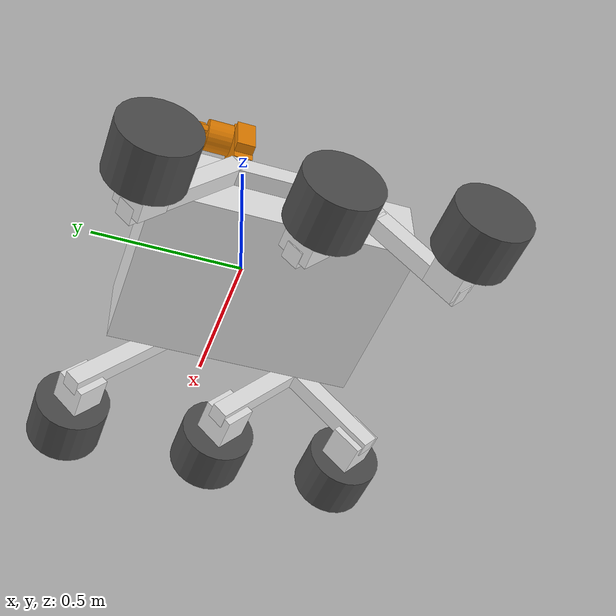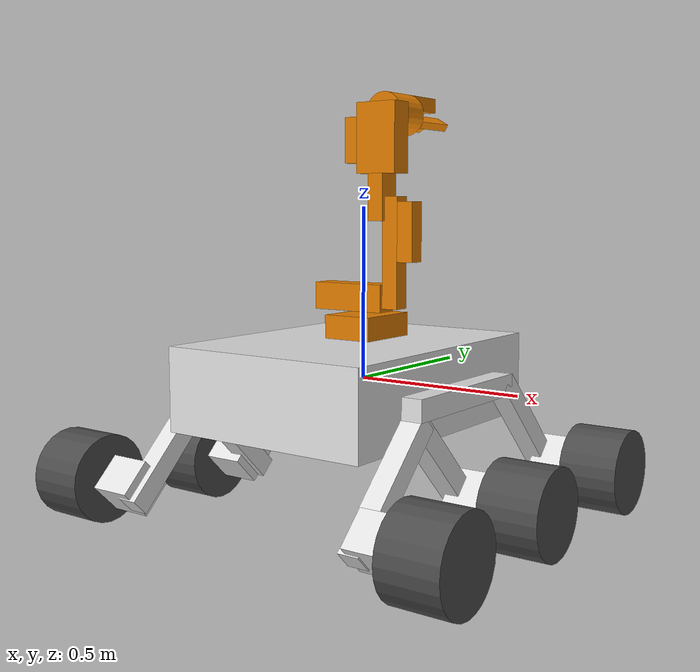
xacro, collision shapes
<?xml version="1.0"?>
<robot name="my_robot_mock" xmlns:xacro="http://www.ros.org/wiki/xacro">

    <xacro:include filename="common_properties.xacro" />
    <xacro:include filename="$(find rover_body_description)/urdf/rover_body.urdf.xacro" />

    <xacro:include filename="rover_body_mock.ros2_control.xacro" />

    <xacro:include filename="$(find rover_arm_description)/urdf/rover_arm.urdf.xacro" />
    <xacro:include filename="$(find rover_arm_description)/urdf/rover_arm.ros2_control.xacro" />

    <!-- rover base frames -->
    <link name="world"/>
    <link name="base_footprint"/>
    <link name="base_link"/>
    <joint name="world_to_base_footprint" type="fixed">
        <parent link="world"/>
        <child link="base_footprint"/>
        <origin xyz="0 0 0" rpy="0 0 0"/>
    </joint>
    <joint name="base_footprint_to_base_link" type="fixed">
        <parent link="base_footprint"/>
        <child link="base_link"/>
        <origin xyz="0 0 0" rpy="0 0 0"/>
    </joint>

    <!-- rover body: detailed frame/suspensions/wheels, main link is body_frame -->
    <xacro:rover_body parent="base_link" prefix="body_">
        <origin xyz="0 0 0" rpy="0 0 0"/>
    </xacro:rover_body>

    <link name="arm_mount"/>
    <joint name="arm_mount_joint" type="fixed">
        <parent link="body_frame"/>
        <child link="arm_mount"/>
        <origin xyz="0 0 0.15" rpy="0 0 0"/>
    </joint>
    <link name="arm_base_link"/>
    <joint name="arm_mount_to_arm_base" type="fixed">
        <parent link="arm_mount"/>
        <child link="arm_base_link"/>
        <origin xyz="0 0 0" rpy="0 0 0"/>
    </joint>

    <xacro:rover_arm parent="arm_base_link" prefix="">
        <origin xyz="0 0 0" rpy="0 0 0"/>
    </xacro:rover_arm>

    <link name="tool0"/>
    <joint name="ee_base_to_tool0" type="fixed">
        <parent link="ee_base"/>
        <child link="tool0"/>
        <origin xyz="0 0 0" rpy="0 0 0"/>
    </joint>

  <xacro:arm_ros2_control name="rover_arm" use_gazebo="true"/>

<!-- Inclusione diretta del modulo telecamera, già vincolato al braccio -->
<xacro:include filename="$(find rover_arm_description)/urdf/camera_arm.urdf.xacro" />
    <!-- Plugin di controllo corretto con estensione .so -->
    <gazebo>
        <plugin filename="libgz_ros2_control-system.so" name="gz_ros2_control::GazeboSimROS2ControlPlugin">
            <parameters>$(optenv arm_ctrl_yaml /tmp/robot_controllers.yaml)</parameters>
        </plugin>
    </gazebo>

    <!-- Plugin di sistema per abilitare i sensori ottici in Gazebo -->
    <gazebo>
        <plugin filename="gz-sim-sensors-system" name="gz::sim::systems::Sensors">
            <render_engine>ogre2</render_engine>
        </plugin>
    </gazebo>

    <!-- Definizione del sensore con Frame ID allineato -->
    <gazebo reference="camera">
      <sensor type="camera" name="rgb_camera">
        <always_on>true</always_on>
        <update_rate>30.0</update_rate>
        <camera>
          <horizontal_fov>1.047</horizontal_fov>
          <image>
            <width>640</width>
            <height>480</height>
            <format>R8G8B8</format>
          </image>
          <clip>
            <near>0.05</near>
            <far>8.0</far>
          </clip>
        </camera>
        <topic>/camera/image_raw</topic>
        <gz_frame_id>camera</gz_frame_id>
      </sensor>
    </gazebo>
</robot>

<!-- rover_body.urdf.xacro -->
<robot xmlns:xacro="http://www.ros.org/wiki/xacro">

  <xacro:include filename="wheel.urdf.xacro" />

  <xacro:macro name="rover_body" params="prefix parent *origin">

  <!-- LINK OFFSETS -->
  <xacro:property name="frame_rotation_offset" value="${pi / 2} 0 0" />
  <xacro:property name="left_suspension_rotation_offset" value="${pi / 2} 0 0" />
  <xacro:property name="left_sub_suspension_rotation_offset" value="${pi / 2} 0 0" />
  <xacro:property name="right_suspension_rotation_offset" value="${pi / 2} 0 0" />
  <xacro:property name="right_sub_suspension_rotation_offset" value="${pi / 2} 0 0" />

  <!-- JOINT POSITIONS -->
  <xacro:property name="frame_joint_pos" value="0 0 0" />
  <xacro:property name="left_suspension_joint_pos" value="-0.3516 -0.053959 0" />
  <xacro:property name="left_sub_suspension_joint_pos" value="0.028 -0.249772 -0.051126" />
  <xacro:property name="right_suspension_joint_pos" value="0.3516 -0.053959 0" />
  <xacro:property name="right_sub_suspension_joint_pos" value="-0.028 -0.249772 -0.051126" />

  <!-- Camera dimentions and positions -->
  <xacro:property name="pole_height" value="0.312"/>
  <xacro:property name="pole_width" value="0.02"/>
  <xacro:property name="camera_len" value="0.178"/>
  <xacro:property name="camera_width" value="0.045"/>
  <xacro:property name="camera_height" value="0.03"/>

  <!-- COLORS -->
  <!-- links color -->
  <material name="${prefix}links_color">
    <color rgba="0.9 0.9 0.9 1.0"/>
  </material>

  <link name="${prefix}frame">
    <inertial>
      <mass value="20.0"/>
      <inertia ixx="1.0" ixy="0.0" ixz="0.0" iyy="1.0" iyz="0.0" izz="1.0"/>
    </inertial>
    <visual>
      <origin xyz="0 0 0" rpy="${frame_rotation_offset}"/>
      <geometry>
        <mesh filename="package://rover_body_description/meshes/visual/frame.stl" scale="0.001 0.001 0.001"/>
      </geometry>
      <material name="${prefix}links_color"/>
    </visual>
    <collision>
      <origin xyz="0 -0.053959 0" rpy="0 0 0"/>
      <geometry>
        <box size="0.64 0.84 0.24"/>
      </geometry>
    </collision>
  </link>

  <link name="${prefix}left_suspension">
    <inertial>
      <mass value="3.0"/>
      <inertia ixx="0.1" ixy="0.0" ixz="0.0" iyy="0.1" iyz="0.0" izz="0.1"/>
    </inertial>
    <visual>
      <origin xyz="0 0 0" rpy="${left_suspension_rotation_offset}"/>
      <geometry>
        <mesh filename="package://rover_body_description/meshes/visual/left_suspension.stl" scale="0.001 0.001 0.001"/>
      </geometry>
      <material name="${prefix}links_color"/>
    </visual>
    <collision>
      <origin xyz="-0.024 -0.032 0" rpy="0 0 0"/>
      <geometry>
        <box size="0.06 0.48 0.06"/>
      </geometry>
    </collision>
    <collision>
      <origin xyz="-0.024 ${-0.032+0.38} -0.15" rpy="${- pi / 4} 0 0"/>
      <geometry>
        <box size="0.06 0.45 0.06"/>
      </geometry>
    </collision>
    <collision>
      <origin xyz="-0.094 ${-0.032 + 0.38 + 0.12} ${-0.15-0.12}" rpy="${- pi / 4} 0 0"/>
      <geometry>
        <box size="0.14 0.11 0.11"/>
      </geometry>
    </collision>
  </link>

  <link name="${prefix}left_sub_suspension">
    <inertial>
      <mass value="1.5"/>
      <inertia ixx="0.05" ixy="0.0" ixz="0.0" iyy="0.05" iyz="0.0" izz="0.05"/>
    </inertial>
    <visual>
      <origin xyz="0 0 0" rpy="${left_sub_suspension_rotation_offset}"/>
      <geometry>
        <mesh filename="package://rover_body_description/meshes/visual/left_sub_suspension.stl" scale="0.001 0.001 0.001"/>
      </geometry>
      <material name="${prefix}links_color"/>
    </visual>
    <collision>
      <origin xyz="-0.05 0.125 -0.125" rpy="${- pi / 4} 0 0"/>
      <geometry>
        <box size="0.06 0.4 0.06"/>
      </geometry>
    </collision>
    <collision>
      <origin xyz="-0.05 -0.125 -0.125" rpy="${pi / 4} 0 0"/>
      <geometry>
        <box size="0.06 0.4 0.06"/>
      </geometry>
    </collision>
    <collision>
      <origin xyz="-0.11 ${0.125 + 0.1} ${- 0.125 - 0.1}" rpy="${- pi / 4} 0 0"/>
      <geometry>
        <box size="0.14 0.11 0.11"/>
      </geometry>
    </collision>
    <collision>
      <origin xyz="-0.11 ${- 0.125 - 0.1} ${- 0.125 - 0.1}" rpy="${- pi / 4} 0 0"/>
      <geometry>
        <box size="0.14 0.11 0.11"/>
      </geometry>
    </collision>
  </link>

  <link name="${prefix}right_suspension">
    <inertial>
      <mass value="3.0"/>
      <inertia ixx="0.1" ixy="0.0" ixz="0.0" iyy="0.1" iyz="0.0" izz="0.1"/>
    </inertial>
    <visual>
      <origin xyz="0 0 0" rpy="${right_suspension_rotation_offset}"/>
      <geometry>
        <mesh filename="package://rover_body_description/meshes/visual/right_suspension.stl" scale="0.001 0.001 0.001"/>
      </geometry>
      <material name="${prefix}links_color"/>
    </visual>
    <collision>
      <origin xyz="0.024 -0.032 0" rpy="0 0 0"/>
      <geometry>
        <box size="0.06 0.48 0.06"/>
      </geometry>
    </collision>
    <collision>
      <origin xyz="0.024 ${-0.032+0.38} -0.15" rpy="${- pi / 4} 0 0"/>
      <geometry>
        <box size="0.06 0.45 0.06"/>
      </geometry>
    </collision>
    <collision>
      <origin xyz="0.094 ${-0.032 + 0.38 + 0.12} ${-0.15-0.12}" rpy="${- pi / 4} 0 0"/>
      <geometry>
        <box size="0.14 0.11 0.11"/>
      </geometry>
    </collision>
  </link>

  <link name="${prefix}right_sub_suspension">
    <inertial>
      <mass value="1.5"/>
      <inertia ixx="0.05" ixy="0.0" ixz="0.0" iyy="0.05" iyz="0.0" izz="0.05"/>
    </inertial>
    <visual>
      <origin xyz="0 0 0" rpy="${right_sub_suspension_rotation_offset}"/>
      <geometry>
        <mesh filename="package://rover_body_description/meshes/visual/right_sub_suspension.stl" scale="0.001 0.001 0.001"/>
      </geometry>
      <material name="${prefix}links_color"/>
    </visual>
    <collision>
      <origin xyz="0.05 0.125 -0.125" rpy="${- pi / 4} 0 0"/>
      <geometry>
        <box size="0.06 0.4 0.06"/>
      </geometry>
    </collision>
    <collision>
      <origin xyz="0.05 -0.125 -0.125" rpy="${pi / 4} 0 0"/>
      <geometry>
        <box size="0.06 0.4 0.06"/>
      </geometry>
    </collision>
    <collision>
      <origin xyz="0.11 ${0.125 + 0.1} ${- 0.125 - 0.1}" rpy="${- pi / 4} 0 0"/>
      <geometry>
        <box size="0.14 0.11 0.11"/>
      </geometry>
    </collision>
    <collision>
      <origin xyz="0.11 ${- 0.125 - 0.1} ${- 0.125 - 0.1}" rpy="${- pi / 4} 0 0"/>
      <geometry>
        <box size="0.14 0.11 0.11"/>
      </geometry>
    </collision>
  </link>

  <joint name="${prefix}mount_joint" type="fixed">
    <parent link="${parent}"/>
    <child link="${prefix}frame"/>
    <xacro:insert_block name="origin" />
  </joint>

  <joint name="${prefix}left_suspension_joint" type="revolute">
    <parent link="${prefix}frame"/>
    <child link="${prefix}left_suspension"/>
    <origin xyz="${left_suspension_joint_pos}" rpy="0 0 0"/>
    <axis xyz="1 0 0"/>
    <limit lower="${-pi / 2}" upper="${pi / 2}" effort="50.0" velocity="1.0"/>
  </joint>

  <joint name="${prefix}left_sub_suspension_joint" type="revolute">
    <parent link="${prefix}left_suspension"/>
    <child link="${prefix}left_sub_suspension"/>
    <origin xyz="${left_sub_suspension_joint_pos}" rpy="0 0 0"/>
    <axis xyz="1 0 0"/>
    <limit lower="${-pi / 2}" upper="${pi / 2}" effort="50.0" velocity="1.0"/>
  </joint>

  <joint name="${prefix}right_suspension_joint" type="revolute">
    <parent link="${prefix}frame"/>
    <child link="${prefix}right_suspension"/>
    <origin xyz="${right_suspension_joint_pos}" rpy="0 0 0"/>
    <axis xyz="1 0 0"/>
    <limit lower="${-pi / 2}" upper="${pi / 2}" effort="50.0" velocity="1.0"/>
  </joint>

  <joint name="${prefix}right_sub_suspension_joint" type="revolute">
    <parent link="${prefix}right_suspension"/>
    <child link="${prefix}right_sub_suspension"/>
    <origin xyz="${right_sub_suspension_joint_pos}" rpy="0 0 0"/>
    <axis xyz="1 0 0"/>
    <limit lower="${-pi / 2}" upper="${pi / 2}" effort="50.0" velocity="1.0"/>
  </joint>

  <!-- Left Wheels - mirror=0 -->
  <xacro:wheel prefix="${prefix}front_left" parent="${prefix}left_suspension" x_pos="-0.137" y_pos="0.480039" z_pos="-0.276626" mirror="0" />
  <xacro:wheel prefix="${prefix}mid_left"   parent="${prefix}left_sub_suspension" x_pos="-0.1645"  y_pos="0.211339" z_pos="-0.244995" mirror="0" />
  <xacro:wheel prefix="${prefix}rear_left"  parent="${prefix}left_sub_suspension" x_pos="-0.1645" y_pos="-0.244995" z_pos="-0.211339" mirror="0" />

  <!-- Right Wheels - mirror=1 -->
  <xacro:wheel prefix="${prefix}front_right" parent="${prefix}right_suspension" x_pos="0.137" y_pos="0.480039" z_pos="-0.276626" mirror="1" />
  <xacro:wheel prefix="${prefix}mid_right"   parent="${prefix}right_sub_suspension" x_pos="0.1645"  y_pos="0.229" z_pos="-0.2285" mirror="1" />
  <xacro:wheel prefix="${prefix}rear_right"  parent="${prefix}right_sub_suspension" x_pos="0.1645" y_pos="-0.229" z_pos="-0.225" mirror="1" />

  </xacro:macro>
</robot>

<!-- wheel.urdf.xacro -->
<robot xmlns:xacro="http://www.ros.org/wiki/xacro">

  <!-- x_pos, y_pos, z_pos: wheel joint position in relation to the parent link -->
  <!-- mirror: has a value of 0 for the left side, and 1 for the right side -->
  <xacro:macro name="wheel" params="prefix parent x_pos y_pos z_pos mirror">

    <joint name="${prefix}_wheel_joint" type="continuous">
      <parent link="${parent}"/>
      <child link="${prefix}_wheel_link"/>
      <origin xyz="${x_pos} ${y_pos} ${z_pos}" rpy="0 0 0"/>
      <axis xyz="1 0 0"/>
    </joint>

    <link name="${prefix}_wheel_link">
      <visual>
        <origin xyz="0 0 0" rpy="${pi / 2} 0 ${mirror * pi}"/>
        <geometry>
          <mesh filename="package://rover_body_description/meshes/visual/wheel.stl" scale="0.001 0.001 0.001"/>
        </geometry>
        <material name="black">
          <color rgba="0.3 0.3 0.3 1.0"/>
        </material>
      </visual>

      <collision>
        <origin xyz="${(mirror * 0.17) - 0.17 / 2} 0 0" rpy="${pi / 2} 0 ${pi / 2}"/>
        <geometry>
          <cylinder radius="0.125" length="0.17"/>
        </geometry>
      </collision>

      <inertial>
        <mass value="2.0"/>
        <inertia ixx="0.015" ixy="0.0" ixz="0.0" iyy="0.025" iyz="0.0" izz="0.025"/>
      </inertial>
    </link>

  </xacro:macro>
</robot>

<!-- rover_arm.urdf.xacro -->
<robot name="rover_arm" xmlns:xacro="http://www.ros.org/wiki/xacro">
<xacro:macro name="rover_arm" params="parent prefix *origin">
<!-- LINK OFFSETS -->
<xacro:property name="base_rotation_offset" value="${pi / 2} 0 0"/>
<xacro:property name="j1_rotation_offset" value="${pi / 2} 0 0"/>
<xacro:property name="j2_rotation_offset" value="${pi / 6} 0 0"/>
<xacro:property name="j3_rotation_offset" value="${pi - 0.4366117} 0 0"/>
<!-- JOINT POSITIONS -->
<xacro:property name="j1_joint_pos" value="0 0 0.024"/>
<xacro:property name="j2_joint_pos" value="0.0808 0 0.071"/>
<xacro:property name="j3_joint_pos" value="0.007 0 0.25"/>
<xacro:property name="ee_base_joint_pos" value="-0.028 0 0.2715"/>
<xacro:property name="slider_joint_pos" value="0 0.11 0"/>
<xacro:property name="finger1_joint_pos" value="-0.052384 0.134522 -0.016965"/>
<xacro:property name="finger1_joint_rotation" value="0 ${-pi / 6} 0"/>
<xacro:property name="finger2_joint_pos" value="0.011500 0.134522 0.053848"/>
<xacro:property name="finger2_joint_rotation" value="0 ${pi / 2} 0"/>
<xacro:property name="finger3_joint_pos" value="0.040884 0.134522 -0.036883"/>
<xacro:property name="finger3_joint_rotation" value="0 ${pi * 7 / 6} 0"/>
<!-- COLORS -->
<!-- links color -->
<material name="${prefix}links_color">
<color rgba="0.9 0.5 0.0 1.0"/>
</material>
<!-- SLIDER TO FINGER CINEMATIC RELATION -->
<xacro:property name="slider_length" value="0.05"/>
<xacro:property name="finger_rotation_upper_bound" value="${pi / 2}"/>
<!--
 the formula used to calculate the multiplier is given by the total rotation distance divided by the total sliding distance
-->
<xacro:property name="relation_multip" value="${finger_rotation_upper_bound / slider_length}"/>
<!--
 Wrist gear visual: a toothed-hub (disc + crossing spokes) that rotates
        with the wrist joint, making j4 (pitch) and j5 (roll) clearly visible.
-->
<xacro:macro name="wrist_gear" params="radius length color xyz rpy">
<visual name="gear_disc">
<origin xyz="${xyz}" rpy="${rpy}"/>
<geometry>
<cylinder radius="${radius}" length="${length}"/>
</geometry>
<material name="wrist_gear_mat">
<color rgba="${color}"/>
</material>
</visual>
<visual name="gear_bar_x">
<origin xyz="${xyz}" rpy="${rpy}"/>
<geometry>
<box size="${radius * 2.0} ${radius * 0.28} ${length}"/>
</geometry>
<material name="wrist_gear_mat">
<color rgba="${color}"/>
</material>
</visual>
<visual name="gear_bar_y">
<origin xyz="${xyz}" rpy="${rpy}"/>
<geometry>
<box size="${radius * 0.28} ${radius * 2.0} ${length}"/>
</geometry>
<material name="wrist_gear_mat">
<color rgba="${color}"/>
</material>
</visual>
</xacro:macro>
<!-- BASE LINK -->
<link name="${prefix}base">
<visual>
<origin xyz="0 0 0" rpy="${base_rotation_offset}"/>
<geometry>
<mesh filename="package://rover_arm_description/meshes/visual/base.stl" scale="0.001 0.001 0.001"/>
</geometry>
<material name="${prefix}links_color"/>
</visual>
<collision>
<origin xyz="0 0.015 -0.022" rpy="0 0 0"/>
<geometry>
<box size="0.153000 0.202000 0.122040"/>
</geometry>
</collision>
<inertial>
<mass value="2.5"/>
<inertia ixx="0.02" ixy="0.0" ixz="0.0" iyy="0.02" iyz="0.0" izz="0.02"/>
</inertial>
</link>
<link name="${prefix}j1">
<visual>
<origin xyz="0 0 0" rpy="${j1_rotation_offset}"/>
<geometry>
<mesh filename="package://rover_arm_description/meshes/visual/j1.stl" scale="0.001 0.001 0.001"/>
</geometry>
<material name="${prefix}links_color"/>
</visual>
<collision>
<origin xyz="-0.035 0 0.065" rpy="0 0 0"/>
<geometry>
<box size="0.23 0.07 0.08"/>
</geometry>
</collision>
<inertial>
<mass value="1.5"/>
<inertia ixx="0.01" ixy="0.0" ixz="0.0" iyy="0.01" iyz="0.0" izz="0.01"/>
</inertial>
</link>
<link name="${prefix}j2">
<visual>
<origin xyz="0 0 0" rpy="${j2_rotation_offset}"/>
<geometry>
<mesh filename="package://rover_arm_description/meshes/visual/j2.stl" scale="0.001 0.001 0.001"/>
</geometry>
<material name="${prefix}links_color"/>
</visual>
<collision>
<origin xyz="${0.05 / 2} 0 ${0.25 / 2}" rpy="0 0 0"/>
<geometry>
<box size="0.05 0.05 0.32"/>
</geometry>
</collision>
<collision>
<origin xyz="${0.05 + 0.05 / 2} 0 0.185" rpy="0 0 0"/>
<geometry>
<box size="0.05 0.05 0.17"/>
</geometry>
</collision>
<inertial>
<mass value="1.2"/>
<inertia ixx="0.008" ixy="0.0" ixz="0.0" iyy="0.008" iyz="0.0" izz="0.008"/>
</inertial>
</link>
<link name="${prefix}j3">
<visual>
<origin xyz="0 0 0" rpy="${j3_rotation_offset}"/>
<geometry>
<mesh filename="package://rover_arm_description/meshes/visual/j3.stl" scale="0.001 0.001 0.001"/>
</geometry>
<material name="${prefix}links_color"/>
</visual>
<!-- drive gear for wrist pitch (j4) -->
<xacro:wrist_gear radius="0.04" length="0.02" color="0.25 0.25 0.28 1.0" xyz="${ee_base_joint_pos}" rpy="0 ${-pi / 2} 0"/>
<collision>
<origin xyz="${-0.05 / 2} 0 0.04" rpy="0 0 0"/>
<geometry>
<box size="0.05 0.07 0.15"/>
</geometry>
</collision>
<collision>
<origin xyz="${-0.05 / 2} 0 0.2" rpy="0 0 0"/>
<geometry>
<box size="0.13 0.07 0.2"/>
</geometry>
</collision>
<collision>
<origin xyz="${-(0.05 + 0.13 + 0.04) / 2} 0 0.195" rpy="0 0 0"/>
<geometry>
<box size="0.04 0.07 0.13"/>
</geometry>
</collision>
<inertial>
<mass value="1.0"/>
<inertia ixx="0.006" ixy="0.0" ixz="0.0" iyy="0.006" iyz="0.0" izz="0.006"/>
</inertial>
</link>
<!-- END EFFECTOR BASE -->
<link name="${prefix}ee_base">
<visual>
<origin xyz="0 0.018007 0" rpy="0 0 0"/>
<geometry>
<mesh filename="package://rover_arm_description/meshes/visual/end_effector_base.stl" scale="0.001 0.001 0.001"/>
</geometry>
<material name="${prefix}links_color"/>
</visual>
<!-- driven gear for wrist roll (j5) -->
<xacro:wrist_gear radius="0.038" length="0.02" color="0.25 0.25 0.28 1.0" xyz="0 0 0" rpy="${pi / 2} 0 0"/>
<collision>
<origin xyz="0 0.07 0" rpy="${pi / 2} 0 0"/>
<geometry>
<cylinder radius="0.06" length="0.12"/>
</geometry>
</collision>
<inertial>
<mass value="0.6"/>
<inertia ixx="0.003" ixy="0.0" ixz="0.0" iyy="0.003" iyz="0.0" izz="0.003"/>
</inertial>
</link>
<!-- END EFFECTOR SLIDER -->
<link name="${prefix}ee_slider">
<visual>
<origin xyz="0 0 0" rpy="0 0 0"/>
<geometry>
<mesh filename="package://rover_arm_description/meshes/visual/end_effector_slider.stl" scale="0.001 0.001 0.001"/>
</geometry>
<material name="${prefix}links_color"/>
</visual>
<inertial>
<mass value="0.3"/>
<inertia ixx="0.002" ixy="0.0" ixz="0.0" iyy="0.002" iyz="0.0" izz="0.002"/>
</inertial>
</link>
<!-- END EFFECTOR FINGERS -->
<!-- finger 1 -->
<link name="${prefix}ee_finger1">
<visual>
<origin xyz="0 0 0" rpy="0 0 0"/>
<geometry>
<mesh filename="package://rover_arm_description/meshes/visual/end_effector_finger.stl" scale="0.001 0.001 0.001"/>
</geometry>
<material name="${prefix}links_color"/>
</visual>
<collision>
<origin xyz="0.016 ${0.14 / 2} ${- 0.022 / 2}" rpy="0 0 0"/>
<geometry>
<box size="0.042 0.14 0.022"/>
</geometry>
</collision>
<inertial>
<mass value="0.05"/>
<inertia ixx="0.0005" ixy="0.0" ixz="0.0" iyy="0.0005" iyz="0.0" izz="0.0005"/>
</inertial>
</link>
<!-- finger 2 -->
<link name="${prefix}ee_finger2">
<visual>
<origin xyz="0 0 0" rpy="0 0 0"/>
<geometry>
<mesh filename="package://rover_arm_description/meshes/visual/end_effector_finger.stl" scale="0.001 0.001 0.001"/>
</geometry>
<material name="${prefix}links_color"/>
</visual>
<collision>
<origin xyz="0.016 ${0.14 / 2} ${- 0.022 / 2}" rpy="0 0 0"/>
<geometry>
<box size="0.042 0.14 0.022"/>
</geometry>
</collision>
<inertial>
<mass value="0.05"/>
<inertia ixx="0.0005" ixy="0.0" ixz="0.0" iyy="0.0005" iyz="0.0" izz="0.0005"/>
</inertial>
</link>
<!-- finger 3 -->
<link name="${prefix}ee_finger3">
<visual>
<origin xyz="0 0 0" rpy="0 0 0"/>
<geometry>
<mesh filename="package://rover_arm_description/meshes/visual/end_effector_finger.stl" scale="0.001 0.001 0.001"/>
</geometry>
<material name="${prefix}links_color"/>
</visual>
<collision>
<origin xyz="0.016 ${0.14 / 2} ${- 0.022 / 2}" rpy="0 0 0"/>
<geometry>
<box size="0.042 0.14 0.022"/>
</geometry>
</collision>
<inertial>
<mass value="0.05"/>
<inertia ixx="0.0005" ixy="0.0" ixz="0.0" iyy="0.0005" iyz="0.0" izz="0.0005"/>
</inertial>
</link>
<joint name="${prefix}mount_joint" type="fixed">
<parent link="${parent}"/>
<child link="${prefix}base"/>
<xacro:insert_block name="origin"/>
</joint>
<!-- CONNECT J1 TO THE BASE -->
<joint name="${prefix}j1_joint" type="continuous">
<parent link="${prefix}base"/>
<child link="${prefix}j1"/>
<origin xyz="${j1_joint_pos}" rpy="0 0 0"/>
<!-- Rotation Axis -->
<axis xyz="0 0 1"/>
</joint>
<!-- CONNECT J2 TO J1 -->
<joint name="${prefix}j2_joint" type="revolute">
<parent link="${prefix}j1"/>
<child link="${prefix}j2"/>
<origin xyz="${j2_joint_pos}" rpy="0 0 0"/>
<!-- Rotation Axis -->
<axis xyz="1 0 0"/>
<!-- Limits -->
<limit lower="-1.5808" upper="1.5808" effort="50.0" velocity="1.0"/>
</joint>
<!-- CONNECT J3 TO J2 -->
<joint name="${prefix}j3_joint" type="revolute">
<parent link="${prefix}j2"/>
<child link="${prefix}j3"/>
<!-- Positioning and origin of j4 based from j3 -->
<origin xyz="${j3_joint_pos}" rpy="0 0 0"/>
<!-- Rotation Axis -->
<axis xyz="1 0 0"/>
<!-- Limits -->
<limit lower="-1.5808" upper="1.5808" effort="50.0" velocity="1.0"/>
</joint>
<!-- CONNECT THE END EFFECTOR BASE TO J3 -->
<link name="${prefix}ee_base_dummy">
<!--
 needed since urdf does not allow child with multiple parents, so this is a dummy-parent
-->
<inertial>
<mass value="0.02"/>
<inertia ixx="0.0002" ixy="0.0" ixz="0.0" iyy="0.0002" iyz="0.0" izz="0.0002"/>
</inertial>
<!-- driven gear for wrist pitch (j4) -->
<xacro:wrist_gear radius="0.04" length="0.02" color="0.25 0.25 0.28 1.0" xyz="0 0 0" rpy="0 ${-pi / 2} 0"/>
<!-- drive gear for wrist roll (j5) -->
<xacro:wrist_gear radius="0.038" length="0.02" color="0.25 0.25 0.28 1.0" xyz="0 0 0" rpy="${pi / 2} 0 0"/>
</link>
<joint name="${prefix}ee_base_joint_x" type="revolute">
<parent link="${prefix}j3"/>
<child link="${prefix}ee_base_dummy"/>
<origin xyz="${ee_base_joint_pos}" rpy="0 0 0"/>
<!-- Rotation Axis -->
<axis xyz="1 0 0"/>
<!-- Limits -->
<limit lower="-0.01" upper="3.1516" effort="50.0" velocity="1.0"/>
</joint>
<joint name="${prefix}ee_base_joint_y" type="continuous">
<parent link="${prefix}ee_base_dummy"/>
<child link="${prefix}ee_base"/>
<origin xyz="0 0 0" rpy="0 0 0"/>
<!-- Rotation Axis -->
<axis xyz="0 1 0"/>
</joint>
<!-- CONNECT THE SLIDER TO THE END EFFECTOR BASE -->
<joint name="${prefix}slider_joint" type="prismatic">
<parent link="${prefix}ee_base"/>
<child link="${prefix}ee_slider"/>
<origin xyz="${slider_joint_pos}" rpy="0 0 0"/>
<!-- Sliding Axis -->
<axis xyz="0 1 0"/>
<!-- Limits -->
<limit lower="-0.01" upper="0.06" effort="50.0" velocity="1.0"/>
</joint>
<!-- CONNECT THE FINGERS TO THE END EFFECTOR BASE -->
<!-- finger 1 joint-->
<joint name="${prefix}finger1_joint" type="revolute">
<parent link="${prefix}ee_base"/>
<child link="${prefix}ee_finger1"/>
<origin xyz="${finger1_joint_pos}" rpy="${finger1_joint_rotation}"/>
<!-- Sliding Axis -->
<axis xyz="0 0 1"/>
<!-- Limits -->
<limit lower="0.0" upper="${finger_rotation_upper_bound}" effort="50.0" velocity="1.0"/>
<mimic joint="${prefix}slider_joint" multiplier="${relation_multip}" offset="0.0"/>
</joint>
<!-- finger 2 joint-->
<joint name="${prefix}finger2_joint" type="revolute">
<parent link="${prefix}ee_base"/>
<child link="${prefix}ee_finger2"/>
<origin xyz="${finger2_joint_pos}" rpy="${finger2_joint_rotation}"/>
<!-- Sliding Axis -->
<axis xyz="0 0 1"/>
<!-- Limits -->
<limit lower="0.0" upper="${finger_rotation_upper_bound}" effort="50.0" velocity="1.0"/>
<mimic joint="${prefix}slider_joint" multiplier="${relation_multip}" offset="0.0"/>
</joint>
<!-- finger 3 joint-->
<joint name="${prefix}finger3_joint" type="revolute">
<parent link="${prefix}ee_base"/>
<child link="${prefix}ee_finger3"/>
<origin xyz="${finger3_joint_pos}" rpy="${finger3_joint_rotation}"/>
<!-- Sliding Axis -->
<axis xyz="0 0 1"/>
<!-- Limits -->
<limit lower="0.0" upper="${finger_rotation_upper_bound}" effort="50.0" velocity="1.0"/>
<mimic joint="${prefix}slider_joint" multiplier="${relation_multip}" offset="0.0"/>
</joint>
</xacro:macro>
</robot>

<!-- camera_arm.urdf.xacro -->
<robot xmlns:xacro="http://www.ros.org/wiki/xacro" name="gemini_camera">

  <!-- 1. Link fisico della telecamera con box dimensionato correttamente -->
  <link name="gemini_camera_link">
    <visual>
      <origin xyz="0.0 0 0.0" rpy="0 0 0"/>
      <geometry>
        <box size="0.042 0.042 0.04"/>
      </geometry>
      <material name="dark_grey">
        <color rgba="0.2 0.2 0.2 1.0"/>
      </material>
    </visual>

    <collision>
      <origin xyz="0.0 0 0.0" rpy="0 0 0"/>
      <geometry>
        <box size="0.0015 0.0035 0.0035"/>
      </geometry>
    </collision>

    <inertial>
      <origin xyz="0 0 0" rpy="0 0 0"/>
      <mass value="0.116"/>
      <inertia ixx="0.000020" ixy="0.0" ixz="0.0" iyy="0.000013" iyz="0.0" izz="0.000013"/>
    </inertial>
  </link>

  <!-- 2. Giunto di ancoraggio al centro delle dita (ee_base), senza sballare le coordinate -->
  <joint name="camera_rover_mount_joint" type="fixed">
    <parent link="ee_base"/>
    <child link="gemini_camera_link"/>
    <!-- Posizionata dritta nel palmo, a 2 centimetri in avanti -->
    <origin xyz="0.0 0.14 0.01" rpy="0 -1.57 3.14"/>
  </joint>

  <!-- 3. Link e giunto ottico per i topic RGBD -->
  <link name="gemini_camera_optical_frame"/>

  <joint name="camera_optical_joint" type="fixed">
    <parent link="gemini_camera_link"/>
    <child link="gemini_camera_optical_frame"/>
    <origin xyz="0 0 0" rpy="1.570796 -1.570796 0"/>
  </joint>

  <!-- Previene la fusione del giunto fisico -->
  <gazebo reference="camera_rover_mount_joint">
    <preserveFixedJoint>true</preserveFixedJoint>
  </gazebo>

  <!-- Previene la fusione del giunto ottico -->
  <gazebo reference="camera_optical_joint">
    <preserveFixedJoint>true</preserveFixedJoint>
  </gazebo>

  <!-- 4. Definizione del sensore Gazebo -->
<gazebo reference="gemini_camera_link">
  <sensor name="gemini_camera" type="rgbd_camera">
    <pose>0 0 0 -1.570796 0 -1.570796</pose>
    <frame_id>gemini_camera_optical_frame</frame_id>
    <always_on>true</always_on>
    <update_rate>30.0</update_rate>
    <topic>/camera/rgbd</topic>

    <camera>
      <!-- FOV orizzontale RGB: 94 gradi -->
      <horizontal_fov>1.64061</horizontal_fov>

      <!-- Risoluzione RGB Gemini 305 -->
      <image>
        <width>1280</width>
        <height>800</height>
      </image>

      <clip>
        <near>0.2</near>
        <far>1.0</far>
      </clip>

      <optical_frame_id>gemini_camera_optical_frame</optical_frame_id>
    </camera>
  </sensor>
</gazebo>
</robot>
